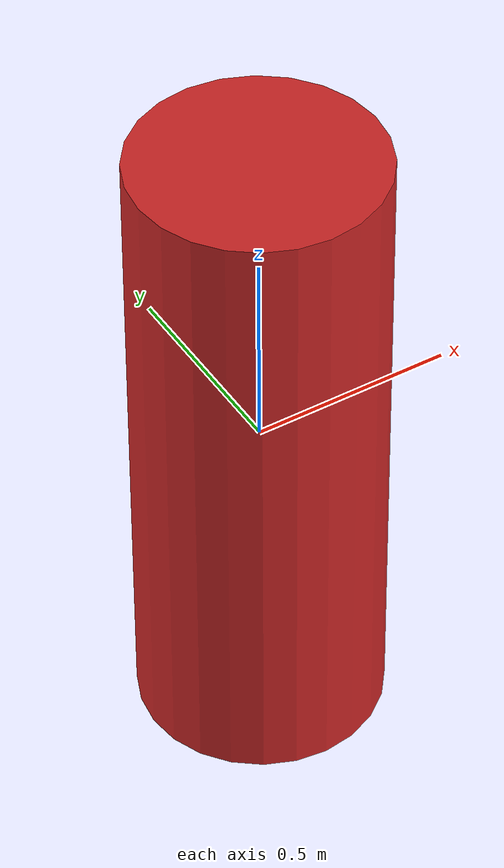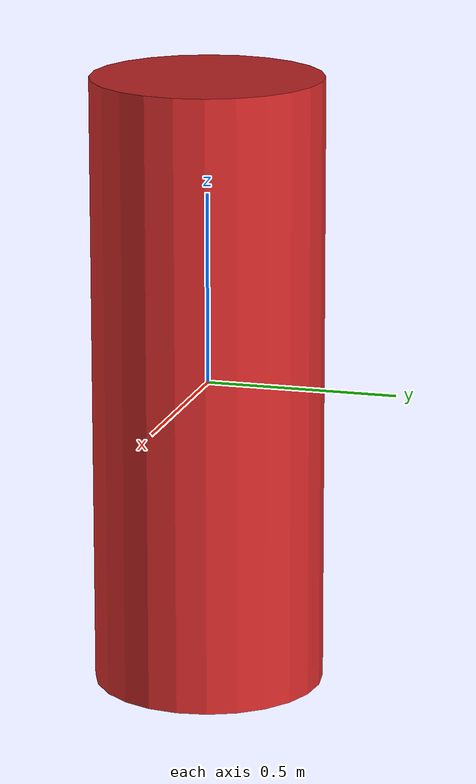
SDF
<?xml version='1.0'?>
<sdf version='1.7'>
  <model name='unit_cylinder'>
    <link name='link'>
      <inertial>
        <mass>1</mass>
        <inertia>
          <ixx>0.145833</ixx>
          <ixy>0</ixy>
          <ixz>0</ixz>
          <iyy>0.145833</iyy>
          <iyz>0</iyz>
          <izz>0.125</izz>
        </inertia>
        <pose>0 0 0 0 -0 0</pose>
      </inertial>
      <self_collide>0</self_collide>
      <enable_wind>0</enable_wind>
      <kinematic>0</kinematic>
      <pose>0 0 0 0 -0 0</pose>
      <gravity>1</gravity>
      <visual name='visual'>
        <geometry>
          <cylinder>
            <radius>0.301429</radius>
            <length>1.60945</length>
          </cylinder>
        </geometry>
        <material>
          <script>
            <name>Gazebo/Red</name>
            <uri>file://media/materials/scripts/gazebo.material</uri>
          </script>
          <shader type='pixel'>
            <normal_map>__default__</normal_map>
          </shader>
          <ambient>1 0 0 1</ambient>
          <diffuse>1 0 0 1</diffuse>
          <specular>0.1 0.1 0.1 1</specular>
          <emissive>0 0 0 1</emissive>
        </material>
        <pose>0 0 0 0 -0 0</pose>
        <transparency>0</transparency>
        <cast_shadows>1</cast_shadows>
      </visual>
    </link>
    <static>1</static>
    <allow_auto_disable>1</allow_auto_disable>
  </model>
</sdf>
